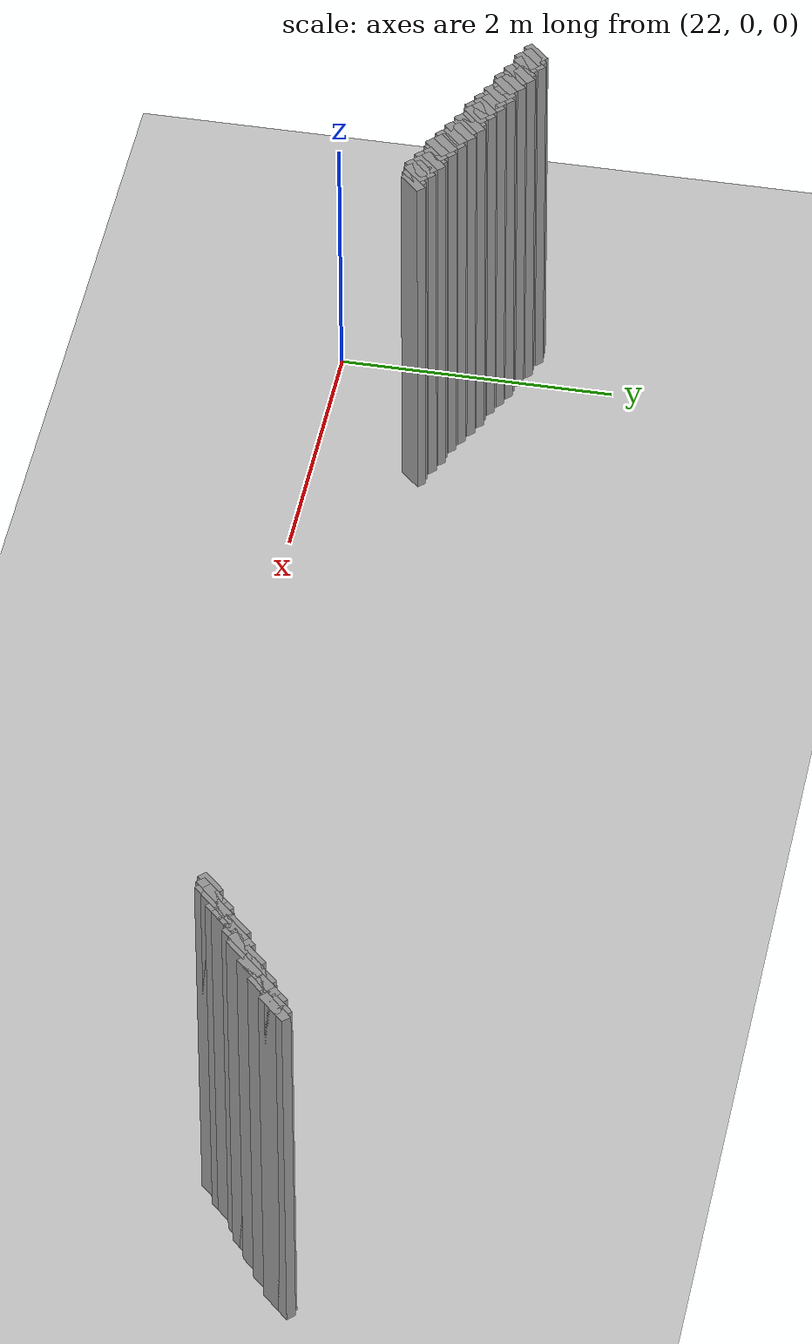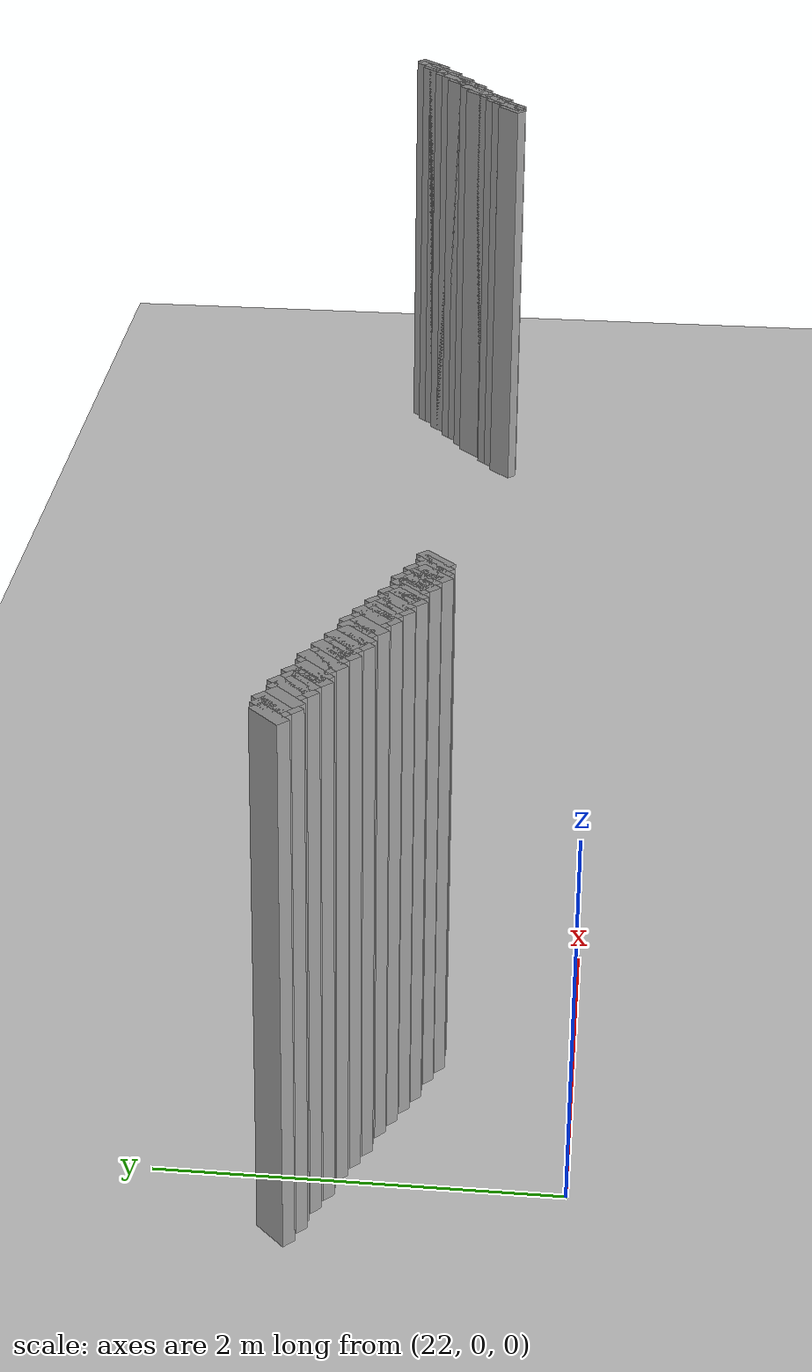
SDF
<sdf version="1.5">
 <world name="default">
  <include><uri>model://ground_plane</uri></include>
  <include><uri>model://sun</uri></include>
  <model name="grey_wall_5121">
   <static>1</static>
   <link name="link">
    <pose>31.25 1.4  1.4 0 0 -0.785398163397</pose>
    <collision name="collision"><geometry><box><size>0.0707106781187 .2  2.8</size></box></geometry></collision>
    <visual name="visual">
     <cast_shadows>0</cast_shadows>
     <geometry><box><size>0.0707106781187 .2  2.8</size></box></geometry>
     <material>
      <script>
       <uri>model://grey_wall/materials/scripts</uri>
       <uri>model://grey_wall/materials/textures</uri>
       <name>vrc/grey_wall</name>
      </script>
     </material>
    </visual>
   </link>
  </model>
  <model name="grey_wall_5122">
   <static>1</static>
   <link name="link">
    <pose>31.3 1.4  1.4 0 0 -0.785398163397</pose>
    <collision name="collision"><geometry><box><size>0.0707106781187 .2  2.8</size></box></geometry></collision>
    <visual name="visual">
     <cast_shadows>0</cast_shadows>
     <geometry><box><size>0.0707106781187 .2  2.8</size></box></geometry>
     <material>
      <script>
       <uri>model://grey_wall/materials/scripts</uri>
       <uri>model://grey_wall/materials/textures</uri>
       <name>vrc/grey_wall</name>
      </script>
     </material>
    </visual>
   </link>
  </model>
  <model name="grey_wall_5123">
   <static>1</static>
   <link name="link">
    <pose>21.6 1.35  1.4 0 0 -0.785398163397</pose>
    <collision name="collision"><geometry><box><size>0.0707106781187 .2  2.8</size></box></geometry></collision>
    <visual name="visual">
     <cast_shadows>0</cast_shadows>
     <geometry><box><size>0.0707106781187 .2  2.8</size></box></geometry>
     <material>
      <script>
       <uri>model://grey_wall/materials/scripts</uri>
       <uri>model://grey_wall/materials/textures</uri>
       <name>vrc/grey_wall</name>
      </script>
     </material>
    </visual>
   </link>
  </model>
  <model name="grey_wall_5124">
   <static>1</static>
   <link name="link">
    <pose>21.65 1.35  1.4 0 0 -0.785398163397</pose>
    <collision name="collision"><geometry><box><size>0.0707106781187 .2  2.8</size></box></geometry></collision>
    <visual name="visual">
     <cast_shadows>0</cast_shadows>
     <geometry><box><size>0.0707106781187 .2  2.8</size></box></geometry>
     <material>
      <script>
       <uri>model://grey_wall/materials/scripts</uri>
       <uri>model://grey_wall/materials/textures</uri>
       <name>vrc/grey_wall</name>
      </script>
     </material>
    </visual>
   </link>
  </model>
  <model name="grey_wall_5125">
   <static>1</static>
   <link name="link">
    <pose>21.7 1.35  1.4 0 0 -0.785398163397</pose>
    <collision name="collision"><geometry><box><size>0.0707106781187 .2  2.8</size></box></geometry></collision>
    <visual name="visual">
     <cast_shadows>0</cast_shadows>
     <geometry><box><size>0.0707106781187 .2  2.8</size></box></geometry>
     <material>
      <script>
       <uri>model://grey_wall/materials/scripts</uri>
       <uri>model://grey_wall/materials/textures</uri>
       <name>vrc/grey_wall</name>
      </script>
     </material>
    </visual>
   </link>
  </model>
  <model name="grey_wall_5126">
   <static>1</static>
   <link name="link">
    <pose>31.15 1.35  1.4 0 0 -0.785398163397</pose>
    <collision name="collision"><geometry><box><size>0.0707106781187 .2  2.8</size></box></geometry></collision>
    <visual name="visual">
     <cast_shadows>0</cast_shadows>
     <geometry><box><size>0.0707106781187 .2  2.8</size></box></geometry>
     <material>
      <script>
       <uri>model://grey_wall/materials/scripts</uri>
       <uri>model://grey_wall/materials/textures</uri>
       <name>vrc/grey_wall</name>
      </script>
     </material>
    </visual>
   </link>
  </model>
  <model name="grey_wall_5127">
   <static>1</static>
   <link name="link">
    <pose>31.2 1.35  1.4 0 0 -0.785398163397</pose>
    <collision name="collision"><geometry><box><size>0.0707106781187 .2  2.8</size></box></geometry></collision>
    <visual name="visual">
     <cast_shadows>0</cast_shadows>
     <geometry><box><size>0.0707106781187 .2  2.8</size></box></geometry>
     <material>
      <script>
       <uri>model://grey_wall/materials/scripts</uri>
       <uri>model://grey_wall/materials/textures</uri>
       <name>vrc/grey_wall</name>
      </script>
     </material>
    </visual>
   </link>
  </model>
  <model name="grey_wall_5128">
   <static>1</static>
   <link name="link">
    <pose>31.25 1.35  1.4 0 0 -0.785398163397</pose>
    <collision name="collision"><geometry><box><size>0.0707106781187 .2  2.8</size></box></geometry></collision>
    <visual name="visual">
     <cast_shadows>0</cast_shadows>
     <geometry><box><size>0.0707106781187 .2  2.8</size></box></geometry>
     <material>
      <script>
       <uri>model://grey_wall/materials/scripts</uri>
       <uri>model://grey_wall/materials/textures</uri>
       <name>vrc/grey_wall</name>
      </script>
     </material>
    </visual>
   </link>
  </model>
  <model name="grey_wall_5129">
   <static>1</static>
   <link name="link">
    <pose>21.7 1.3  1.4 0 0 -0.785398163397</pose>
    <collision name="collision"><geometry><box><size>0.0707106781187 .2  2.8</size></box></geometry></collision>
    <visual name="visual">
     <cast_shadows>0</cast_shadows>
     <geometry><box><size>0.0707106781187 .2  2.8</size></box></geometry>
     <material>
      <script>
       <uri>model://grey_wall/materials/scripts</uri>
       <uri>model://grey_wall/materials/textures</uri>
       <name>vrc/grey_wall</name>
      </script>
     </material>
    </visual>
   </link>
  </model>
  <model name="grey_wall_5130">
   <static>1</static>
   <link name="link">
    <pose>21.75 1.3  1.4 0 0 -0.785398163397</pose>
    <collision name="collision"><geometry><box><size>0.0707106781187 .2  2.8</size></box></geometry></collision>
    <visual name="visual">
     <cast_shadows>0</cast_shadows>
     <geometry><box><size>0.0707106781187 .2  2.8</size></box></geometry>
     <material>
      <script>
       <uri>model://grey_wall/materials/scripts</uri>
       <uri>model://grey_wall/materials/textures</uri>
       <name>vrc/grey_wall</name>
      </script>
     </material>
    </visual>
   </link>
  </model>
  <model name="grey_wall_5131">
   <static>1</static>
   <link name="link">
    <pose>21.8 1.3  1.4 0 0 -0.785398163397</pose>
    <collision name="collision"><geometry><box><size>0.0707106781187 .2  2.8</size></box></geometry></collision>
    <visual name="visual">
     <cast_shadows>0</cast_shadows>
     <geometry><box><size>0.0707106781187 .2  2.8</size></box></geometry>
     <material>
      <script>
       <uri>model://grey_wall/materials/scripts</uri>
       <uri>model://grey_wall/materials/textures</uri>
       <name>vrc/grey_wall</name>
      </script>
     </material>
    </visual>
   </link>
  </model>
  <model name="grey_wall_5132">
   <static>1</static>
   <link name="link">
    <pose>21.85 1.3  1.4 0 0 -0.785398163397</pose>
    <collision name="collision"><geometry><box><size>0.0707106781187 .2  2.8</size></box></geometry></collision>
    <visual name="visual">
     <cast_shadows>0</cast_shadows>
     <geometry><box><size>0.0707106781187 .2  2.8</size></box></geometry>
     <material>
      <script>
       <uri>model://grey_wall/materials/scripts</uri>
       <uri>model://grey_wall/materials/textures</uri>
       <name>vrc/grey_wall</name>
      </script>
     </material>
    </visual>
   </link>
  </model>
  <model name="grey_wall_5133">
   <static>1</static>
   <link name="link">
    <pose>31.1 1.3  1.4 0 0 -0.785398163397</pose>
    <collision name="collision"><geometry><box><size>0.0707106781187 .2  2.8</size></box></geometry></collision>
    <visual name="visual">
     <cast_shadows>0</cast_shadows>
     <geometry><box><size>0.0707106781187 .2  2.8</size></box></geometry>
     <material>
      <script>
       <uri>model://grey_wall/materials/scripts</uri>
       <uri>model://grey_wall/materials/textures</uri>
       <name>vrc/grey_wall</name>
      </script>
     </material>
    </visual>
   </link>
  </model>
  <model name="grey_wall_5134">
   <static>1</static>
   <link name="link">
    <pose>31.15 1.3  1.4 0 0 -0.785398163397</pose>
    <collision name="collision"><geometry><box><size>0.0707106781187 .2  2.8</size></box></geometry></collision>
    <visual name="visual">
     <cast_shadows>0</cast_shadows>
     <geometry><box><size>0.0707106781187 .2  2.8</size></box></geometry>
     <material>
      <script>
       <uri>model://grey_wall/materials/scripts</uri>
       <uri>model://grey_wall/materials/textures</uri>
       <name>vrc/grey_wall</name>
      </script>
     </material>
    </visual>
   </link>
  </model>
  <model name="grey_wall_5135">
   <static>1</static>
   <link name="link">
    <pose>21.85 1.25  1.4 0 0 -0.785398163397</pose>
    <collision name="collision"><geometry><box><size>0.0707106781187 .2  2.8</size></box></geometry></collision>
    <visual name="visual">
     <cast_shadows>0</cast_shadows>
     <geometry><box><size>0.0707106781187 .2  2.8</size></box></geometry>
     <material>
      <script>
       <uri>model://grey_wall/materials/scripts</uri>
       <uri>model://grey_wall/materials/textures</uri>
       <name>vrc/grey_wall</name>
      </script>
     </material>
    </visual>
   </link>
  </model>
  <model name="grey_wall_5136">
   <static>1</static>
   <link name="link">
    <pose>21.9 1.25  1.4 0 0 -0.785398163397</pose>
    <collision name="collision"><geometry><box><size>0.0707106781187 .2  2.8</size></box></geometry></collision>
    <visual name="visual">
     <cast_shadows>0</cast_shadows>
     <geometry><box><size>0.0707106781187 .2  2.8</size></box></geometry>
     <material>
      <script>
       <uri>model://grey_wall/materials/scripts</uri>
       <uri>model://grey_wall/materials/textures</uri>
       <name>vrc/grey_wall</name>
      </script>
     </material>
    </visual>
   </link>
  </model>
  <model name="grey_wall_5137">
   <static>1</static>
   <link name="link">
    <pose>21.95 1.25  1.4 0 0 -0.785398163397</pose>
    <collision name="collision"><geometry><box><size>0.0707106781187 .2  2.8</size></box></geometry></collision>
    <visual name="visual">
     <cast_shadows>0</cast_shadows>
     <geometry><box><size>0.0707106781187 .2  2.8</size></box></geometry>
     <material>
      <script>
       <uri>model://grey_wall/materials/scripts</uri>
       <uri>model://grey_wall/materials/textures</uri>
       <name>vrc/grey_wall</name>
      </script>
     </material>
    </visual>
   </link>
  </model>
  <model name="grey_wall_5138">
   <static>1</static>
   <link name="link">
    <pose>31.0 1.25  1.4 0 0 -0.785398163397</pose>
    <collision name="collision"><geometry><box><size>0.0707106781187 .2  2.8</size></box></geometry></collision>
    <visual name="visual">
     <cast_shadows>0</cast_shadows>
     <geometry><box><size>0.0707106781187 .2  2.8</size></box></geometry>
     <material>
      <script>
       <uri>model://grey_wall/materials/scripts</uri>
       <uri>model://grey_wall/materials/textures</uri>
       <name>vrc/grey_wall</name>
      </script>
     </material>
    </visual>
   </link>
  </model>
  <model name="grey_wall_5139">
   <static>1</static>
   <link name="link">
    <pose>31.05 1.25  1.4 0 0 -0.785398163397</pose>
    <collision name="collision"><geometry><box><size>0.0707106781187 .2  2.8</size></box></geometry></collision>
    <visual name="visual">
     <cast_shadows>0</cast_shadows>
     <geometry><box><size>0.0707106781187 .2  2.8</size></box></geometry>
     <material>
      <script>
       <uri>model://grey_wall/materials/scripts</uri>
       <uri>model://grey_wall/materials/textures</uri>
       <name>vrc/grey_wall</name>
      </script>
     </material>
    </visual>
   </link>
  </model>
  <model name="grey_wall_5140">
   <static>1</static>
   <link name="link">
    <pose>31.1 1.25  1.4 0 0 -0.785398163397</pose>
    <collision name="collision"><geometry><box><size>0.0707106781187 .2  2.8</size></box></geometry></collision>
    <visual name="visual">
     <cast_shadows>0</cast_shadows>
     <geometry><box><size>0.0707106781187 .2  2.8</size></box></geometry>
     <material>
      <script>
       <uri>model://grey_wall/materials/scripts</uri>
       <uri>model://grey_wall/materials/textures</uri>
       <name>vrc/grey_wall</name>
      </script>
     </material>
    </visual>
   </link>
  </model>
  <model name="grey_wall_5141">
   <static>1</static>
   <link name="link">
    <pose>21.95 1.2  1.4 0 0 -0.785398163397</pose>
    <collision name="collision"><geometry><box><size>0.0707106781187 .2  2.8</size></box></geometry></collision>
    <visual name="visual">
     <cast_shadows>0</cast_shadows>
     <geometry><box><size>0.0707106781187 .2  2.8</size></box></geometry>
     <material>
      <script>
       <uri>model://grey_wall/materials/scripts</uri>
       <uri>model://grey_wall/materials/textures</uri>
       <name>vrc/grey_wall</name>
      </script>
     </material>
    </visual>
   </link>
  </model>
  <model name="grey_wall_5142">
   <static>1</static>
   <link name="link">
    <pose>22.0 1.2  1.4 0 0 -0.785398163397</pose>
    <collision name="collision"><geometry><box><size>0.0707106781187 .2  2.8</size></box></geometry></collision>
    <visual name="visual">
     <cast_shadows>0</cast_shadows>
     <geometry><box><size>0.0707106781187 .2  2.8</size></box></geometry>
     <material>
      <script>
       <uri>model://grey_wall/materials/scripts</uri>
       <uri>model://grey_wall/materials/textures</uri>
       <name>vrc/grey_wall</name>
      </script>
     </material>
    </visual>
   </link>
  </model>
  <model name="grey_wall_5143">
   <static>1</static>
   <link name="link">
    <pose>22.05 1.2  1.4 0 0 -0.785398163397</pose>
    <collision name="collision"><geometry><box><size>0.0707106781187 .2  2.8</size></box></geometry></collision>
    <visual name="visual">
     <cast_shadows>0</cast_shadows>
     <geometry><box><size>0.0707106781187 .2  2.8</size></box></geometry>
     <material>
      <script>
       <uri>model://grey_wall/materials/scripts</uri>
       <uri>model://grey_wall/materials/textures</uri>
       <name>vrc/grey_wall</name>
      </script>
     </material>
    </visual>
   </link>
  </model>
  <model name="grey_wall_5144">
   <static>1</static>
   <link name="link">
    <pose>22.1 1.2  1.4 0 0 -0.785398163397</pose>
    <collision name="collision"><geometry><box><size>0.0707106781187 .2  2.8</size></box></geometry></collision>
    <visual name="visual">
     <cast_shadows>0</cast_shadows>
     <geometry><box><size>0.0707106781187 .2  2.8</size></box></geometry>
     <material>
      <script>
       <uri>model://grey_wall/materials/scripts</uri>
       <uri>model://grey_wall/materials/textures</uri>
       <name>vrc/grey_wall</name>
      </script>
     </material>
    </visual>
   </link>
  </model>
  <model name="grey_wall_5145">
   <static>1</static>
   <link name="link">
    <pose>30.95 1.2  1.4 0 0 -0.785398163397</pose>
    <collision name="collision"><geometry><box><size>0.0707106781187 .2  2.8</size></box></geometry></collision>
    <visual name="visual">
     <cast_shadows>0</cast_shadows>
     <geometry><box><size>0.0707106781187 .2  2.8</size></box></geometry>
     <material>
      <script>
       <uri>model://grey_wall/materials/scripts</uri>
       <uri>model://grey_wall/materials/textures</uri>
       <name>vrc/grey_wall</name>
      </script>
     </material>
    </visual>
   </link>
  </model>
  <model name="grey_wall_5146">
   <static>1</static>
   <link name="link">
    <pose>31.0 1.2  1.4 0 0 -0.785398163397</pose>
    <collision name="collision"><geometry><box><size>0.0707106781187 .2  2.8</size></box></geometry></collision>
    <visual name="visual">
     <cast_shadows>0</cast_shadows>
     <geometry><box><size>0.0707106781187 .2  2.8</size></box></geometry>
     <material>
      <script>
       <uri>model://grey_wall/materials/scripts</uri>
       <uri>model://grey_wall/materials/textures</uri>
       <name>vrc/grey_wall</name>
      </script>
     </material>
    </visual>
   </link>
  </model>
  <model name="grey_wall_5147">
   <static>1</static>
   <link name="link">
    <pose>22.1 1.15  1.4 0 0 -0.785398163397</pose>
    <collision name="collision"><geometry><box><size>0.0707106781187 .2  2.8</size></box></geometry></collision>
    <visual name="visual">
     <cast_shadows>0</cast_shadows>
     <geometry><box><size>0.0707106781187 .2  2.8</size></box></geometry>
     <material>
      <script>
       <uri>model://grey_wall/materials/scripts</uri>
       <uri>model://grey_wall/materials/textures</uri>
       <name>vrc/grey_wall</name>
      </script>
     </material>
    </visual>
   </link>
  </model>
  <model name="grey_wall_5148">
   <static>1</static>
   <link name="link">
    <pose>22.15 1.15  1.4 0 0 -0.785398163397</pose>
    <collision name="collision"><geometry><box><size>0.0707106781187 .2  2.8</size></box></geometry></collision>
    <visual name="visual">
     <cast_shadows>0</cast_shadows>
     <geometry><box><size>0.0707106781187 .2  2.8</size></box></geometry>
     <material>
      <script>
       <uri>model://grey_wall/materials/scripts</uri>
       <uri>model://grey_wall/materials/textures</uri>
       <name>vrc/grey_wall</name>
      </script>
     </material>
    </visual>
   </link>
  </model>
  <model name="grey_wall_5149">
   <static>1</static>
   <link name="link">
    <pose>22.2 1.15  1.4 0 0 -0.785398163397</pose>
    <collision name="collision"><geometry><box><size>0.0707106781187 .2  2.8</size></box></geometry></collision>
    <visual name="visual">
     <cast_shadows>0</cast_shadows>
     <geometry><box><size>0.0707106781187 .2  2.8</size></box></geometry>
     <material>
      <script>
       <uri>model://grey_wall/materials/scripts</uri>
       <uri>model://grey_wall/materials/textures</uri>
       <name>vrc/grey_wall</name>
      </script>
     </material>
    </visual>
   </link>
  </model>
  <model name="grey_wall_5150">
   <static>1</static>
   <link name="link">
    <pose>30.85 1.15  1.4 0 0 -0.785398163397</pose>
    <collision name="collision"><geometry><box><size>0.0707106781187 .2  2.8</size></box></geometry></collision>
    <visual name="visual">
     <cast_shadows>0</cast_shadows>
     <geometry><box><size>0.0707106781187 .2  2.8</size></box></geometry>
     <material>
      <script>
       <uri>model://grey_wall/materials/scripts</uri>
       <uri>model://grey_wall/materials/textures</uri>
       <name>vrc/grey_wall</name>
      </script>
     </material>
    </visual>
   </link>
  </model>
  <model name="grey_wall_5151">
   <static>1</static>
   <link name="link">
    <pose>30.9 1.15  1.4 0 0 -0.785398163397</pose>
    <collision name="collision"><geometry><box><size>0.0707106781187 .2  2.8</size></box></geometry></collision>
    <visual name="visual">
     <cast_shadows>0</cast_shadows>
     <geometry><box><size>0.0707106781187 .2  2.8</size></box></geometry>
     <material>
      <script>
       <uri>model://grey_wall/materials/scripts</uri>
       <uri>model://grey_wall/materials/textures</uri>
       <name>vrc/grey_wall</name>
      </script>
     </material>
    </visual>
   </link>
  </model>
  <model name="grey_wall_5152">
   <static>1</static>
   <link name="link">
    <pose>30.95 1.15  1.4 0 0 -0.785398163397</pose>
    <collision name="collision"><geometry><box><size>0.0707106781187 .2  2.8</size></box></geometry></collision>
    <visual name="visual">
     <cast_shadows>0</cast_shadows>
     <geometry><box><size>0.0707106781187 .2  2.8</size></box></geometry>
     <material>
      <script>
       <uri>model://grey_wall/materials/scripts</uri>
       <uri>model://grey_wall/materials/textures</uri>
       <name>vrc/grey_wall</name>
      </script>
     </material>
    </visual>
   </link>
  </model>
  <model name="grey_wall_5153">
   <static>1</static>
   <link name="link">
    <pose>22.2 1.1  1.4 0 0 -0.785398163397</pose>
    <collision name="collision"><geometry><box><size>0.0707106781187 .2  2.8</size></box></geometry></collision>
    <visual name="visual">
     <cast_shadows>0</cast_shadows>
     <geometry><box><size>0.0707106781187 .2  2.8</size></box></geometry>
     <material>
      <script>
       <uri>model://grey_wall/materials/scripts</uri>
       <uri>model://grey_wall/materials/textures</uri>
       <name>vrc/grey_wall</name>
      </script>
     </material>
    </visual>
   </link>
  </model>
  <model name="grey_wall_5154">
   <static>1</static>
   <link name="link">
    <pose>22.25 1.1  1.4 0 0 -0.785398163397</pose>
    <collision name="collision"><geometry><box><size>0.0707106781187 .2  2.8</size></box></geometry></collision>
    <visual name="visual">
     <cast_shadows>0</cast_shadows>
     <geometry><box><size>0.0707106781187 .2  2.8</size></box></geometry>
     <material>
      <script>
       <uri>model://grey_wall/materials/scripts</uri>
       <uri>model://grey_wall/materials/textures</uri>
       <name>vrc/grey_wall</name>
      </script>
     </material>
    </visual>
   </link>
  </model>
  <model name="grey_wall_5155">
   <static>1</static>
   <link name="link">
    <pose>22.3 1.1  1.4 0 0 -0.785398163397</pose>
    <collision name="collision"><geometry><box><size>0.0707106781187 .2  2.8</size></box></geometry></collision>
    <visual name="visual">
     <cast_shadows>0</cast_shadows>
     <geometry><box><size>0.0707106781187 .2  2.8</size></box></geometry>
     <material>
      <script>
       <uri>model://grey_wall/materials/scripts</uri>
       <uri>model://grey_wall/materials/textures</uri>
       <name>vrc/grey_wall</name>
      </script>
     </material>
    </visual>
   </link>
  </model>
  <model name="grey_wall_5156">
   <static>1</static>
   <link name="link">
    <pose>30.8 1.1  1.4 0 0 -0.785398163397</pose>
    <collision name="collision"><geometry><box><size>0.0707106781187 .2  2.8</size></box></geometry></collision>
    <visual name="visual">
     <cast_shadows>0</cast_shadows>
     <geometry><box><size>0.0707106781187 .2  2.8</size></box></geometry>
     <material>
      <script>
       <uri>model://grey_wall/materials/scripts</uri>
       <uri>model://grey_wall/materials/textures</uri>
       <name>vrc/grey_wall</name>
      </script>
     </material>
    </visual>
   </link>
  </model>
  <model name="grey_wall_5157">
   <static>1</static>
   <link name="link">
    <pose>30.85 1.1  1.4 0 0 -0.785398163397</pose>
    <collision name="collision"><geometry><box><size>0.0707106781187 .2  2.8</size></box></geometry></collision>
    <visual name="visual">
     <cast_shadows>0</cast_shadows>
     <geometry><box><size>0.0707106781187 .2  2.8</size></box></geometry>
     <material>
      <script>
       <uri>model://grey_wall/materials/scripts</uri>
       <uri>model://grey_wall/materials/textures</uri>
       <name>vrc/grey_wall</name>
      </script>
     </material>
    </visual>
   </link>
  </model>
  <model name="grey_wall_5158">
   <static>1</static>
   <link name="link">
    <pose>22.3 1.05  1.4 0 0 -0.785398163397</pose>
    <collision name="collision"><geometry><box><size>0.0707106781187 .2  2.8</size></box></geometry></collision>
    <visual name="visual">
     <cast_shadows>0</cast_shadows>
     <geometry><box><size>0.0707106781187 .2  2.8</size></box></geometry>
     <material>
      <script>
       <uri>model://grey_wall/materials/scripts</uri>
       <uri>model://grey_wall/materials/textures</uri>
       <name>vrc/grey_wall</name>
      </script>
     </material>
    </visual>
   </link>
  </model>
  <model name="grey_wall_5159">
   <static>1</static>
   <link name="link">
    <pose>22.35 1.05  1.4 0 0 -0.785398163397</pose>
    <collision name="collision"><geometry><box><size>0.0707106781187 .2  2.8</size></box></geometry></collision>
    <visual name="visual">
     <cast_shadows>0</cast_shadows>
     <geometry><box><size>0.0707106781187 .2  2.8</size></box></geometry>
     <material>
      <script>
       <uri>model://grey_wall/materials/scripts</uri>
       <uri>model://grey_wall/materials/textures</uri>
       <name>vrc/grey_wall</name>
      </script>
     </material>
    </visual>
   </link>
  </model>
  <model name="grey_wall_5160">
   <static>1</static>
   <link name="link">
    <pose>22.4 1.05  1.4 0 0 -0.785398163397</pose>
    <collision name="collision"><geometry><box><size>0.0707106781187 .2  2.8</size></box></geometry></collision>
    <visual name="visual">
     <cast_shadows>0</cast_shadows>
     <geometry><box><size>0.0707106781187 .2  2.8</size></box></geometry>
     <material>
      <script>
       <uri>model://grey_wall/materials/scripts</uri>
       <uri>model://grey_wall/materials/textures</uri>
       <name>vrc/grey_wall</name>
      </script>
     </material>
    </visual>
   </link>
  </model>
  <model name="grey_wall_5161">
   <static>1</static>
   <link name="link">
    <pose>22.45 1.05  1.4 0 0 -0.785398163397</pose>
    <collision name="collision"><geometry><box><size>0.0707106781187 .2  2.8</size></box></geometry></collision>
    <visual name="visual">
     <cast_shadows>0</cast_shadows>
     <geometry><box><size>0.0707106781187 .2  2.8</size></box></geometry>
     <material>
      <script>
       <uri>model://grey_wall/materials/scripts</uri>
       <uri>model://grey_wall/materials/textures</uri>
       <name>vrc/grey_wall</name>
      </script>
     </material>
    </visual>
   </link>
  </model>
  <model name="grey_wall_5162">
   <static>1</static>
   <link name="link">
    <pose>30.7 1.05  1.4 0 0 -0.785398163397</pose>
    <collision name="collision"><geometry><box><size>0.0707106781187 .2  2.8</size></box></geometry></collision>
    <visual name="visual">
     <cast_shadows>0</cast_shadows>
     <geometry><box><size>0.0707106781187 .2  2.8</size></box></geometry>
     <material>
      <script>
       <uri>model://grey_wall/materials/scripts</uri>
       <uri>model://grey_wall/materials/textures</uri>
       <name>vrc/grey_wall</name>
      </script>
     </material>
    </visual>
   </link>
  </model>
  <model name="grey_wall_5163">
   <static>1</static>
   <link name="link">
    <pose>30.75 1.05  1.4 0 0 -0.785398163397</pose>
    <collision name="collision"><geometry><box><size>0.0707106781187 .2  2.8</size></box></geometry></collision>
    <visual name="visual">
     <cast_shadows>0</cast_shadows>
     <geometry><box><size>0.0707106781187 .2  2.8</size></box></geometry>
     <material>
      <script>
       <uri>model://grey_wall/materials/scripts</uri>
       <uri>model://grey_wall/materials/textures</uri>
       <name>vrc/grey_wall</name>
      </script>
     </material>
    </visual>
   </link>
  </model>
  <model name="grey_wall_5164">
   <static>1</static>
   <link name="link">
    <pose>30.8 1.05  1.4 0 0 -0.785398163397</pose>
    <collision name="collision"><geometry><box><size>0.0707106781187 .2  2.8</size></box></geometry></collision>
    <visual name="visual">
     <cast_shadows>0</cast_shadows>
     <geometry><box><size>0.0707106781187 .2  2.8</size></box></geometry>
     <material>
      <script>
       <uri>model://grey_wall/materials/scripts</uri>
       <uri>model://grey_wall/materials/textures</uri>
       <name>vrc/grey_wall</name>
      </script>
     </material>
    </visual>
   </link>
  </model>
  <model name="grey_wall_5165">
   <static>1</static>
   <link name="link">
    <pose>22.45 1.0  1.4 0 0 -0.785398163397</pose>
    <collision name="collision"><geometry><box><size>0.0707106781187 .2  2.8</size></box></geometry></collision>
    <visual name="visual">
     <cast_shadows>0</cast_shadows>
     <geometry><box><size>0.0707106781187 .2  2.8</size></box></geometry>
     <material>
      <script>
       <uri>model://grey_wall/materials/scripts</uri>
       <uri>model://grey_wall/materials/textures</uri>
       <name>vrc/grey_wall</name>
      </script>
     </material>
    </visual>
   </link>
  </model>
  <model name="grey_wall_5166">
   <static>1</static>
   <link name="link">
    <pose>22.5 1.0  1.4 0 0 -0.785398163397</pose>
    <collision name="collision"><geometry><box><size>0.0707106781187 .2  2.8</size></box></geometry></collision>
    <visual name="visual">
     <cast_shadows>0</cast_shadows>
     <geometry><box><size>0.0707106781187 .2  2.8</size></box></geometry>
     <material>
      <script>
       <uri>model://grey_wall/materials/scripts</uri>
       <uri>model://grey_wall/materials/textures</uri>
       <name>vrc/grey_wall</name>
      </script>
     </material>
    </visual>
   </link>
  </model>
  <model name="grey_wall_5167">
   <static>1</static>
   <link name="link">
    <pose>22.55 1.0  1.4 0 0 -0.785398163397</pose>
    <collision name="collision"><geometry><box><size>0.0707106781187 .2  2.8</size></box></geometry></collision>
    <visual name="visual">
     <cast_shadows>0</cast_shadows>
     <geometry><box><size>0.0707106781187 .2  2.8</size></box></geometry>
     <material>
      <script>
       <uri>model://grey_wall/materials/scripts</uri>
       <uri>model://grey_wall/materials/textures</uri>
       <name>vrc/grey_wall</name>
      </script>
     </material>
    </visual>
   </link>
  </model>
  <model name="grey_wall_5168">
   <static>1</static>
   <link name="link">
    <pose>30.6 1.0  1.4 0 0 -0.785398163397</pose>
    <collision name="collision"><geometry><box><size>0.0707106781187 .2  2.8</size></box></geometry></collision>
    <visual name="visual">
     <cast_shadows>0</cast_shadows>
     <geometry><box><size>0.0707106781187 .2  2.8</size></box></geometry>
     <material>
      <script>
       <uri>model://grey_wall/materials/scripts</uri>
       <uri>model://grey_wall/materials/textures</uri>
       <name>vrc/grey_wall</name>
      </script>
     </material>
    </visual>
   </link>
  </model>
  <model name="grey_wall_5169">
   <static>1</static>
   <link name="link">
    <pose>30.65 1.0  1.4 0 0 -0.785398163397</pose>
    <collision name="collision"><geometry><box><size>0.0707106781187 .2  2.8</size></box></geometry></collision>
    <visual name="visual">
     <cast_shadows>0</cast_shadows>
     <geometry><box><size>0.0707106781187 .2  2.8</size></box></geometry>
     <material>
      <script>
       <uri>model://grey_wall/materials/scripts</uri>
       <uri>model://grey_wall/materials/textures</uri>
       <name>vrc/grey_wall</name>
      </script>
     </material>
    </visual>
   </link>
  </model>
  <model name="grey_wall_5170">
   <static>1</static>
   <link name="link">
    <pose>30.7 1.0  1.4 0 0 -0.785398163397</pose>
    <collision name="collision"><geometry><box><size>0.0707106781187 .2  2.8</size></box></geometry></collision>
    <visual name="visual">
     <cast_shadows>0</cast_shadows>
     <geometry><box><size>0.0707106781187 .2  2.8</size></box></geometry>
     <material>
      <script>
       <uri>model://grey_wall/materials/scripts</uri>
       <uri>model://grey_wall/materials/textures</uri>
       <name>vrc/grey_wall</name>
      </script>
     </material>
    </visual>
   </link>
  </model>
  <model name="grey_wall_5171">
   <static>1</static>
   <link name="link">
    <pose>22.55 0.95  1.4 0 0 -0.785398163397</pose>
    <collision name="collision"><geometry><box><size>0.0707106781187 .2  2.8</size></box></geometry></collision>
    <visual name="visual">
     <cast_shadows>0</cast_shadows>
     <geometry><box><size>0.0707106781187 .2  2.8</size></box></geometry>
     <material>
      <script>
       <uri>model://grey_wall/materials/scripts</uri>
       <uri>model://grey_wall/materials/textures</uri>
       <name>vrc/grey_wall</name>
      </script>
     </material>
    </visual>
   </link>
  </model>
  <model name="grey_wall_5172">
   <static>1</static>
   <link name="link">
    <pose>22.6 0.95  1.4 0 0 -0.785398163397</pose>
    <collision name="collision"><geometry><box><size>0.0707106781187 .2  2.8</size></box></geometry></collision>
    <visual name="visual">
     <cast_shadows>0</cast_shadows>
     <geometry><box><size>0.0707106781187 .2  2.8</size></box></geometry>
     <material>
      <script>
       <uri>model://grey_wall/materials/scripts</uri>
       <uri>model://grey_wall/materials/textures</uri>
       <name>vrc/grey_wall</name>
      </script>
     </material>
    </visual>
   </link>
  </model>
  <model name="grey_wall_5173">
   <static>1</static>
   <link name="link">
    <pose>22.65 0.95  1.4 0 0 -0.785398163397</pose>
    <collision name="collision"><geometry><box><size>0.0707106781187 .2  2.8</size></box></geometry></collision>
    <visual name="visual">
     <cast_shadows>0</cast_shadows>
     <geometry><box><size>0.0707106781187 .2  2.8</size></box></geometry>
     <material>
      <script>
       <uri>model://grey_wall/materials/scripts</uri>
       <uri>model://grey_wall/materials/textures</uri>
       <name>vrc/grey_wall</name>
      </script>
     </material>
    </visual>
   </link>
  </model>
  <model name="grey_wall_5174">
   <static>1</static>
   <link name="link">
    <pose>30.55 0.95  1.4 0 0 -0.785398163397</pose>
    <collision name="collision"><geometry><box><size>0.0707106781187 .2  2.8</size></box></geometry></collision>
    <visual name="visual">
     <cast_shadows>0</cast_shadows>
     <geometry><box><size>0.0707106781187 .2  2.8</size></box></geometry>
     <material>
      <script>
       <uri>model://grey_wall/materials/scripts</uri>
       <uri>model://grey_wall/materials/textures</uri>
       <name>vrc/grey_wall</name>
      </script>
     </material>
    </visual>
   </link>
  </model>
  <model name="grey_wall_5175">
   <static>1</static>
   <link name="link">
    <pose>30.6 0.95  1.4 0 0 -0.785398163397</pose>
    <collision name="collision"><geometry><box><size>0.0707106781187 .2  2.8</size></box></geometry></collision>
    <visual name="visual">
     <cast_shadows>0</cast_shadows>
     <geometry><box><size>0.0707106781187 .2  2.8</size></box></geometry>
     <material>
      <script>
       <uri>model://grey_wall/materials/scripts</uri>
       <uri>model://grey_wall/materials/textures</uri>
       <name>vrc/grey_wall</name>
      </script>
     </material>
    </visual>
   </link>
  </model>
  <model name="grey_wall_5176">
   <static>1</static>
   <link name="link">
    <pose>22.65 0.9  1.4 0 0 -0.785398163397</pose>
    <collision name="collision"><geometry><box><size>0.0707106781187 .2  2.8</size></box></geometry></collision>
    <visual name="visual">
     <cast_shadows>0</cast_shadows>
     <geometry><box><size>0.0707106781187 .2  2.8</size></box></geometry>
     <material>
      <script>
       <uri>model://grey_wall/materials/scripts</uri>
       <uri>model://grey_wall/materials/textures</uri>
       <name>vrc/grey_wall</name>
      </script>
     </material>
    </visual>
   </link>
  </model>
  <model name="grey_wall_5177">
   <static>1</static>
   <link name="link">
    <pose>22.7 0.9  1.4 0 0 -0.785398163397</pose>
    <collision name="collision"><geometry><box><size>0.0707106781187 .2  2.8</size></box></geometry></collision>
    <visual name="visual">
     <cast_shadows>0</cast_shadows>
     <geometry><box><size>0.0707106781187 .2  2.8</size></box></geometry>
     <material>
      <script>
       <uri>model://grey_wall/materials/scripts</uri>
       <uri>model://grey_wall/materials/textures</uri>
       <name>vrc/grey_wall</name>
      </script>
     </material>
    </visual>
   </link>
  </model>
  <model name="grey_wall_5178">
   <static>1</static>
   <link name="link">
    <pose>22.75 0.9  1.4 0 0 -0.785398163397</pose>
    <collision name="collision"><geometry><box><size>0.0707106781187 .2  2.8</size></box></geometry></collision>
    <visual name="visual">
     <cast_shadows>0</cast_shadows>
     <geometry><box><size>0.0707106781187 .2  2.8</size></box></geometry>
     <material>
      <script>
       <uri>model://grey_wall/materials/scripts</uri>
       <uri>model://grey_wall/materials/textures</uri>
       <name>vrc/grey_wall</name>
      </script>
     </material>
    </visual>
   </link>
  </model>
  <model name="grey_wall_5179">
   <static>1</static>
   <link name="link">
    <pose>30.5 0.9  1.4 0 0 -0.785398163397</pose>
    <collision name="collision"><geometry><box><size>0.0707106781187 .2  2.8</size></box></geometry></collision>
    <visual name="visual">
     <cast_shadows>0</cast_shadows>
     <geometry><box><size>0.0707106781187 .2  2.8</size></box></geometry>
     <material>
      <script>
       <uri>model://grey_wall/materials/scripts</uri>
       <uri>model://grey_wall/materials/textures</uri>
       <name>vrc/grey_wall</name>
      </script>
     </material>
    </visual>
   </link>
  </model>
  <model name="grey_wall_5180">
   <static>1</static>
   <link name="link">
    <pose>30.55 0.9  1.4 0 0 -0.785398163397</pose>
    <collision name="collision"><geometry><box><size>0.0707106781187 .2  2.8</size></box></geometry></collision>
    <visual name="visual">
     <cast_shadows>0</cast_shadows>
     <geometry><box><size>0.0707106781187 .2  2.8</size></box></geometry>
     <material>
      <script>
       <uri>model://grey_wall/materials/scripts</uri>
       <uri>model://grey_wall/materials/textures</uri>
       <name>vrc/grey_wall</name>
      </script>
     </material>
    </visual>
   </link>
  </model>
  <model name="grey_wall_5181">
   <static>1</static>
   <link name="link">
    <pose>22.75 0.85  1.4 0 0 -0.785398163397</pose>
    <collision name="collision"><geometry><box><size>0.0707106781187 .2  2.8</size></box></geometry></collision>
    <visual name="visual">
     <cast_shadows>0</cast_shadows>
     <geometry><box><size>0.0707106781187 .2  2.8</size></box></geometry>
     <material>
      <script>
       <uri>model://grey_wall/materials/scripts</uri>
       <uri>model://grey_wall/materials/textures</uri>
       <name>vrc/grey_wall</name>
      </script>
     </material>
    </visual>
   </link>
  </model>
  <model name="grey_wall_5182">
   <static>1</static>
   <link name="link">
    <pose>22.8 0.85  1.4 0 0 -0.785398163397</pose>
    <collision name="collision"><geometry><box><size>0.0707106781187 .2  2.8</size></box></geometry></collision>
    <visual name="visual">
     <cast_shadows>0</cast_shadows>
     <geometry><box><size>0.0707106781187 .2  2.8</size></box></geometry>
     <material>
      <script>
       <uri>model://grey_wall/materials/scripts</uri>
       <uri>model://grey_wall/materials/textures</uri>
       <name>vrc/grey_wall</name>
      </script>
     </material>
    </visual>
   </link>
  </model>
  <model name="grey_wall_5183">
   <static>1</static>
   <link name="link">
    <pose>22.85 0.85  1.4 0 0 -0.785398163397</pose>
    <collision name="collision"><geometry><box><size>0.0707106781187 .2  2.8</size></box></geometry></collision>
    <visual name="visual">
     <cast_shadows>0</cast_shadows>
     <geometry><box><size>0.0707106781187 .2  2.8</size></box></geometry>
     <material>
      <script>
       <uri>model://grey_wall/materials/scripts</uri>
       <uri>model://grey_wall/materials/textures</uri>
       <name>vrc/grey_wall</name>
      </script>
     </material>
    </visual>
   </link>
  </model>
  <model name="grey_wall_5184">
   <static>1</static>
   <link name="link">
    <pose>22.9 0.85  1.4 0 0 -0.785398163397</pose>
    <collision name="collision"><geometry><box><size>0.0707106781187 .2  2.8</size></box></geometry></collision>
    <visual name="visual">
     <cast_shadows>0</cast_shadows>
     <geometry><box><size>0.0707106781187 .2  2.8</size></box></geometry>
     <material>
      <script>
       <uri>model://grey_wall/materials/scripts</uri>
       <uri>model://grey_wall/materials/textures</uri>
       <name>vrc/grey_wall</name>
      </script>
     </material>
    </visual>
   </link>
  </model>
  <model name="grey_wall_5185">
   <static>1</static>
   <link name="link">
    <pose>30.4 0.85  1.4 0 0 -0.785398163397</pose>
    <collision name="collision"><geometry><box><size>0.0707106781187 .2  2.8</size></box></geometry></collision>
    <visual name="visual">
     <cast_shadows>0</cast_shadows>
     <geometry><box><size>0.0707106781187 .2  2.8</size></box></geometry>
     <material>
      <script>
       <uri>model://grey_wall/materials/scripts</uri>
       <uri>model://grey_wall/materials/textures</uri>
       <name>vrc/grey_wall</name>
      </script>
     </material>
    </visual>
   </link>
  </model>
  <model name="grey_wall_5186">
   <static>1</static>
   <link name="link">
    <pose>30.45 0.85  1.4 0 0 -0.785398163397</pose>
    <collision name="collision"><geometry><box><size>0.0707106781187 .2  2.8</size></box></geometry></collision>
    <visual name="visual">
     <cast_shadows>0</cast_shadows>
     <geometry><box><size>0.0707106781187 .2  2.8</size></box></geometry>
     <material>
      <script>
       <uri>model://grey_wall/materials/scripts</uri>
       <uri>model://grey_wall/materials/textures</uri>
       <name>vrc/grey_wall</name>
      </script>
     </material>
    </visual>
   </link>
  </model>
  <model name="grey_wall_5187">
   <static>1</static>
   <link name="link">
    <pose>30.5 0.85  1.4 0 0 -0.785398163397</pose>
    <collision name="collision"><geometry><box><size>0.0707106781187 .2  2.8</size></box></geometry></collision>
    <visual name="visual">
     <cast_shadows>0</cast_shadows>
     <geometry><box><size>0.0707106781187 .2  2.8</size></box></geometry>
     <material>
      <script>
       <uri>model://grey_wall/materials/scripts</uri>
       <uri>model://grey_wall/materials/textures</uri>
       <name>vrc/grey_wall</name>
      </script>
     </material>
    </visual>
   </link>
  </model>
  <model name="grey_wall_5188">
   <static>1</static>
   <link name="link">
    <pose>22.9 0.8  1.4 0 0 -0.785398163397</pose>
    <collision name="collision"><geometry><box><size>0.0707106781187 .2  2.8</size></box></geometry></collision>
    <visual name="visual">
     <cast_shadows>0</cast_shadows>
     <geometry><box><size>0.0707106781187 .2  2.8</size></box></geometry>
     <material>
      <script>
       <uri>model://grey_wall/materials/scripts</uri>
       <uri>model://grey_wall/materials/textures</uri>
       <name>vrc/grey_wall</name>
      </script>
     </material>
    </visual>
   </link>
  </model>
  <model name="grey_wall_5189">
   <static>1</static>
   <link name="link">
    <pose>22.95 0.8  1.4 0 0 -0.785398163397</pose>
    <collision name="collision"><geometry><box><size>0.0707106781187 .2  2.8</size></box></geometry></collision>
    <visual name="visual">
     <cast_shadows>0</cast_shadows>
     <geometry><box><size>0.0707106781187 .2  2.8</size></box></geometry>
     <material>
      <script>
       <uri>model://grey_wall/materials/scripts</uri>
       <uri>model://grey_wall/materials/textures</uri>
       <name>vrc/grey_wall</name>
      </script>
     </material>
    </visual>
   </link>
  </model>
  <model name="grey_wall_5190">
   <static>1</static>
   <link name="link">
    <pose>23.0 0.8  1.4 0 0 -0.785398163397</pose>
    <collision name="collision"><geometry><box><size>0.0707106781187 .2  2.8</size></box></geometry></collision>
    <visual name="visual">
     <cast_shadows>0</cast_shadows>
     <geometry><box><size>0.0707106781187 .2  2.8</size></box></geometry>
     <material>
      <script>
       <uri>model://grey_wall/materials/scripts</uri>
       <uri>model://grey_wall/materials/textures</uri>
       <name>vrc/grey_wall</name>
      </script>
     </material>
    </visual>
   </link>
  </model>
  <model name="grey_wall_5191">
   <static>1</static>
   <link name="link">
    <pose>30.35 0.8  1.4 0 0 -0.785398163397</pose>
    <collision name="collision"><geometry><box><size>0.0707106781187 .2  2.8</size></box></geometry></collision>
    <visual name="visual">
     <cast_shadows>0</cast_shadows>
     <geometry><box><size>0.0707106781187 .2  2.8</size></box></geometry>
     <material>
      <script>
       <uri>model://grey_wall/materials/scripts</uri>
       <uri>model://grey_wall/materials/textures</uri>
       <name>vrc/grey_wall</name>
      </script>
     </material>
    </visual>
   </link>
  </model>
  <model name="grey_wall_5192">
   <static>1</static>
   <link name="link">
    <pose>30.4 0.8  1.4 0 0 -0.785398163397</pose>
    <collision name="collision"><geometry><box><size>0.0707106781187 .2  2.8</size></box></geometry></collision>
    <visual name="visual">
     <cast_shadows>0</cast_shadows>
     <geometry><box><size>0.0707106781187 .2  2.8</size></box></geometry>
     <material>
      <script>
       <uri>model://grey_wall/materials/scripts</uri>
       <uri>model://grey_wall/materials/textures</uri>
       <name>vrc/grey_wall</name>
      </script>
     </material>
    </visual>
   </link>
  </model>
  <model name="grey_wall_5193">
   <static>1</static>
   <link name="link">
    <pose>23.0 0.75  1.4 0 0 -0.785398163397</pose>
    <collision name="collision"><geometry><box><size>0.0707106781187 .2  2.8</size></box></geometry></collision>
    <visual name="visual">
     <cast_shadows>0</cast_shadows>
     <geometry><box><size>0.0707106781187 .2  2.8</size></box></geometry>
     <material>
      <script>
       <uri>model://grey_wall/materials/scripts</uri>
       <uri>model://grey_wall/materials/textures</uri>
       <name>vrc/grey_wall</name>
      </script>
     </material>
    </visual>
   </link>
  </model>
  <model name="grey_wall_5194">
   <static>1</static>
   <link name="link">
    <pose>23.05 0.75  1.4 0 0 -0.785398163397</pose>
    <collision name="collision"><geometry><box><size>0.0707106781187 .2  2.8</size></box></geometry></collision>
    <visual name="visual">
     <cast_shadows>0</cast_shadows>
     <geometry><box><size>0.0707106781187 .2  2.8</size></box></geometry>
     <material>
      <script>
       <uri>model://grey_wall/materials/scripts</uri>
       <uri>model://grey_wall/materials/textures</uri>
       <name>vrc/grey_wall</name>
      </script>
     </material>
    </visual>
   </link>
  </model>
  <model name="grey_wall_5195">
   <static>1</static>
   <link name="link">
    <pose>23.1 0.75  1.4 0 0 -0.785398163397</pose>
    <collision name="collision"><geometry><box><size>0.0707106781187 .2  2.8</size></box></geometry></collision>
    <visual name="visual">
     <cast_shadows>0</cast_shadows>
     <geometry><box><size>0.0707106781187 .2  2.8</size></box></geometry>
     <material>
      <script>
       <uri>model://grey_wall/materials/scripts</uri>
       <uri>model://grey_wall/materials/textures</uri>
       <name>vrc/grey_wall</name>
      </script>
     </material>
    </visual>
   </link>
  </model>
  <model name="grey_wall_5196">
   <static>1</static>
   <link name="link">
    <pose>23.15 0.75  1.4 0 0 -0.785398163397</pose>
    <collision name="collision"><geometry><box><size>0.0707106781187 .2  2.8</size></box></geometry></collision>
    <visual name="visual">
     <cast_shadows>0</cast_shadows>
     <geometry><box><size>0.0707106781187 .2  2.8</size></box></geometry>
     <material>
      <script>
       <uri>model://grey_wall/materials/scripts</uri>
       <uri>model://grey_wall/materials/textures</uri>
       <name>vrc/grey_wall</name>
      </script>
     </material>
    </visual>
   </link>
  </model>
  <model name="grey_wall_5197">
   <static>1</static>
   <link name="link">
    <pose>30.25 0.75  1.4 0 0 -0.785398163397</pose>
    <collision name="collision"><geometry><box><size>0.0707106781187 .2  2.8</size></box></geometry></collision>
    <visual name="visual">
     <cast_shadows>0</cast_shadows>
     <geometry><box><size>0.0707106781187 .2  2.8</size></box></geometry>
     <material>
      <script>
       <uri>model://grey_wall/materials/scripts</uri>
       <uri>model://grey_wall/materials/textures</uri>
       <name>vrc/grey_wall</name>
      </script>
     </material>
    </visual>
   </link>
  </model>
  <model name="grey_wall_5198">
   <static>1</static>
   <link name="link">
    <pose>30.3 0.75  1.4 0 0 -0.785398163397</pose>
    <collision name="collision"><geometry><box><size>0.0707106781187 .2  2.8</size></box></geometry></collision>
    <visual name="visual">
     <cast_shadows>0</cast_shadows>
     <geometry><box><size>0.0707106781187 .2  2.8</size></box></geometry>
     <material>
      <script>
       <uri>model://grey_wall/materials/scripts</uri>
       <uri>model://grey_wall/materials/textures</uri>
       <name>vrc/grey_wall</name>
      </script>
     </material>
    </visual>
   </link>
  </model>
  <model name="grey_wall_5199">
   <static>1</static>
   <link name="link">
    <pose>30.35 0.75  1.4 0 0 -0.785398163397</pose>
    <collision name="collision"><geometry><box><size>0.0707106781187 .2  2.8</size></box></geometry></collision>
    <visual name="visual">
     <cast_shadows>0</cast_shadows>
     <geometry><box><size>0.0707106781187 .2  2.8</size></box></geometry>
     <material>
      <script>
       <uri>model://grey_wall/materials/scripts</uri>
       <uri>model://grey_wall/materials/textures</uri>
       <name>vrc/grey_wall</name>
      </script>
     </material>
    </visual>
   </link>
  </model>
 </world>
</sdf>
